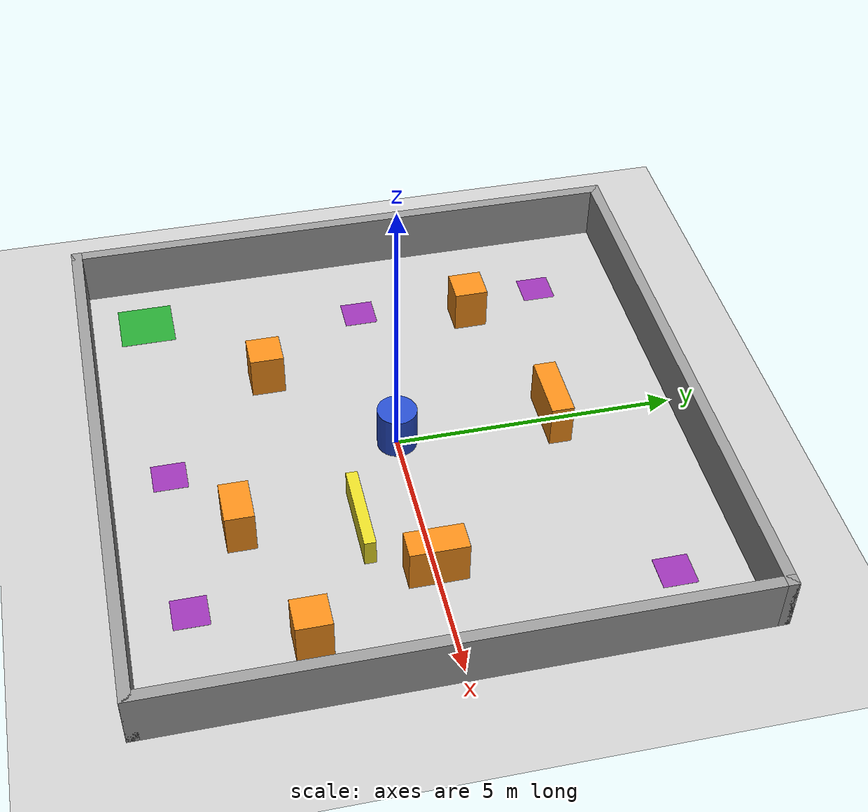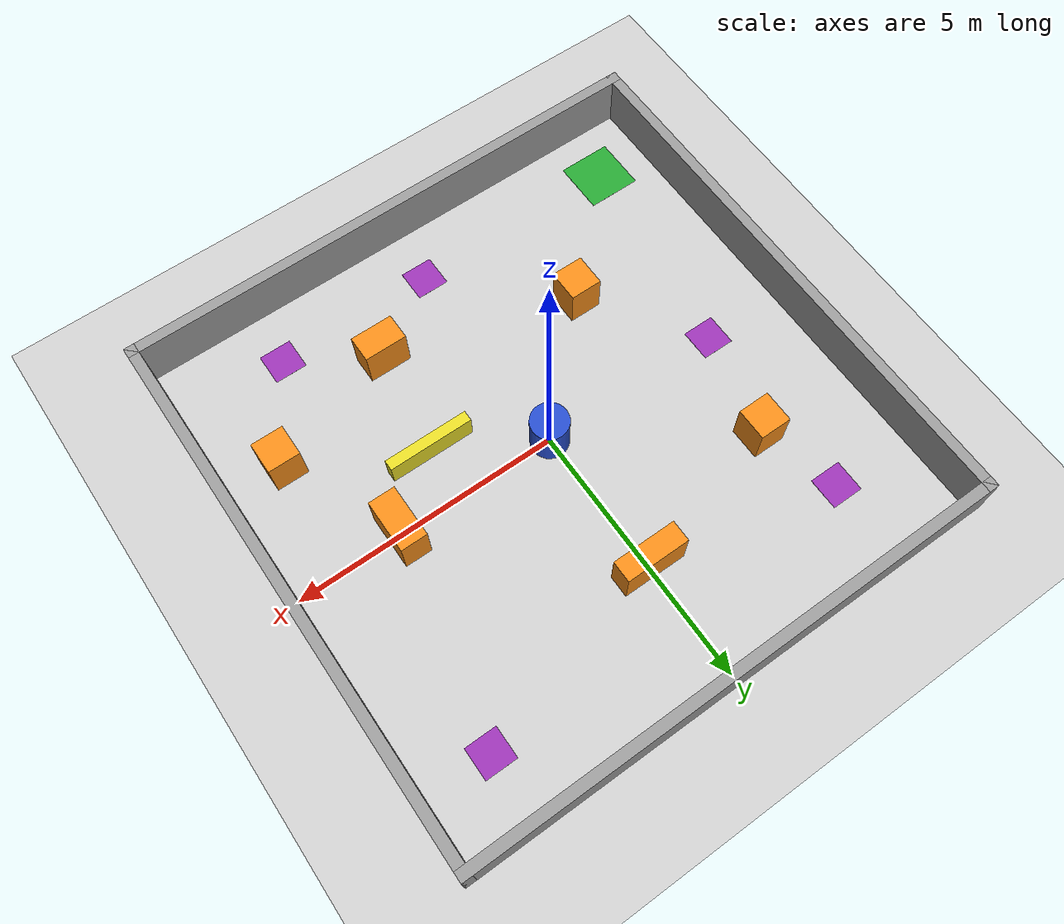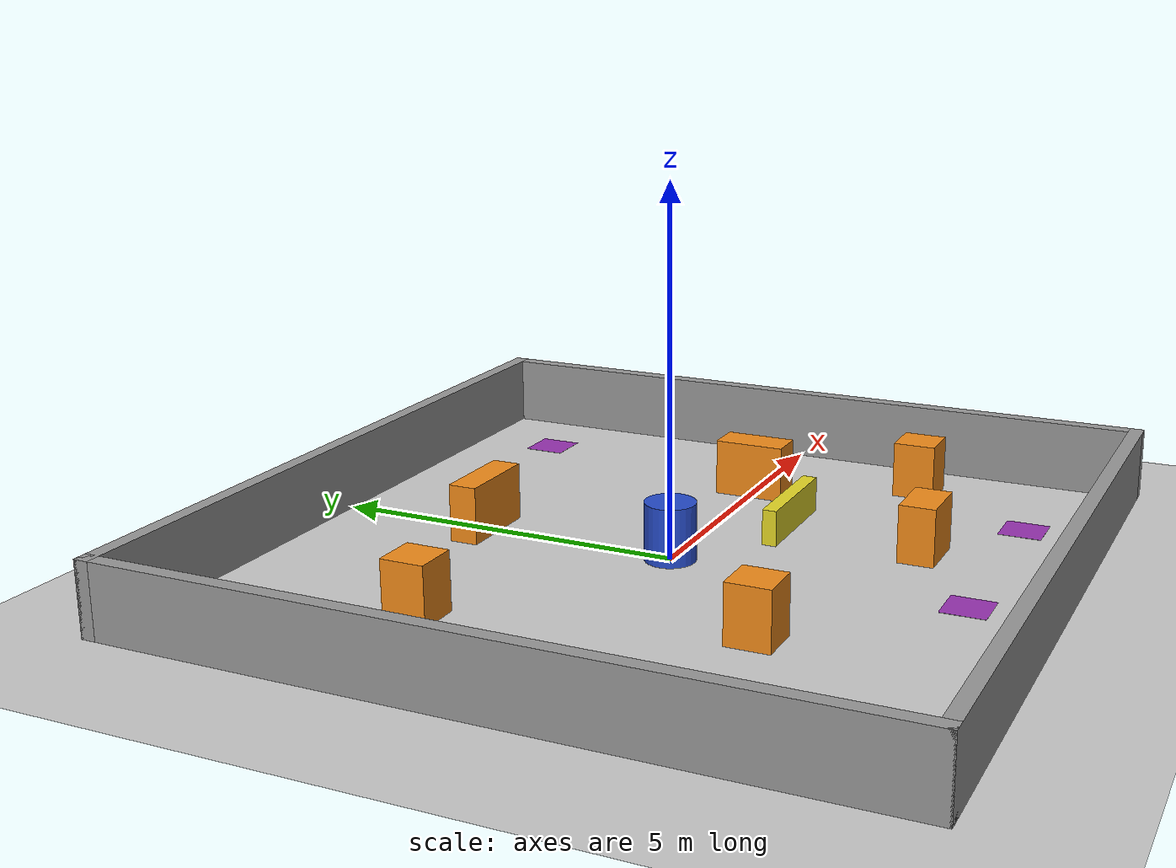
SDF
<sdf version="1.6">
 <world name="obstacle_arena">
  <include><uri>model://sun</uri></include>
  <include><uri>model://ground_plane</uri></include>
  <physics type="ode">
   <real_time_update_rate>1000.0</real_time_update_rate>
   <max_step_size>0.001</max_step_size>
   <real_time_factor>1</real_time_factor>
  </physics>
  <gravity>0 0 -9.8</gravity>
  <scene>
   <ambient>0.6 0.6 0.6 1</ambient>
   <background>0.85 0.9 0.95 1</background>
   <shadows>false</shadows>
  </scene>
  <model name="wall_north">
   <static>true</static>
   <pose>0 5.1 0.5 0 0 0.0</pose>
   <link name="link">
    <collision name="collision"><geometry><box><size>10.4 0.2 1.0</size></box></geometry></collision>
    <visual name="visual">
     <geometry><box><size>10.4 0.2 1.0</size></box></geometry>
     <material>
      <script><uri>file://media/materials/scripts/gazebo.material</uri><name>Gazebo/Grey</name></script>
     </material>
    </visual>
   </link>
  </model>
  <model name="wall_south">
   <static>true</static>
   <pose>0 -5.1 0.5 0 0 0.0</pose>
   <link name="link">
    <collision name="collision"><geometry><box><size>10.4 0.2 1.0</size></box></geometry></collision>
    <visual name="visual">
     <geometry><box><size>10.4 0.2 1.0</size></box></geometry>
     <material>
      <script><uri>file://media/materials/scripts/gazebo.material</uri><name>Gazebo/Grey</name></script>
     </material>
    </visual>
   </link>
  </model>
  <model name="wall_east">
   <static>true</static>
   <pose>5.1 0 0.5 0 0 0.0</pose>
   <link name="link">
    <collision name="collision"><geometry><box><size>0.2 10.4 1.0</size></box></geometry></collision>
    <visual name="visual">
     <geometry><box><size>0.2 10.4 1.0</size></box></geometry>
     <material>
      <script><uri>file://media/materials/scripts/gazebo.material</uri><name>Gazebo/Grey</name></script>
     </material>
    </visual>
   </link>
  </model>
  <model name="wall_west">
   <static>true</static>
   <pose>-5.1 0 0.5 0 0 0.0</pose>
   <link name="link">
    <collision name="collision"><geometry><box><size>0.2 10.4 1.0</size></box></geometry></collision>
    <visual name="visual">
     <geometry><box><size>0.2 10.4 1.0</size></box></geometry>
     <material>
      <script><uri>file://media/materials/scripts/gazebo.material</uri><name>Gazebo/Grey</name></script>
     </material>
    </visual>
   </link>
  </model>
  <model name="box_1">
   <static>true</static>
   <pose>-2.0 -2.0 0.4 0 0 0.0</pose>
   <link name="link">
    <collision name="collision"><geometry><box><size>0.6 0.6 0.8</size></box></geometry></collision>
    <visual name="visual">
     <geometry><box><size>0.6 0.6 0.8</size></box></geometry>
     <material>
      <script><uri>file://media/materials/scripts/gazebo.material</uri><name>Gazebo/Orange</name></script>
     </material>
    </visual>
   </link>
  </model>
  <model name="box_2">
   <static>true</static>
   <pose>1.5 -3.0 0.4 0 0 0.0</pose>
   <link name="link">
    <collision name="collision"><geometry><box><size>0.8 0.5 0.8</size></box></geometry></collision>
    <visual name="visual">
     <geometry><box><size>0.8 0.5 0.8</size></box></geometry>
     <material>
      <script><uri>file://media/materials/scripts/gazebo.material</uri><name>Gazebo/Orange</name></script>
     </material>
    </visual>
   </link>
  </model>
  <model name="box_3">
   <static>true</static>
   <pose>3.0 0.0 0.4 0 0 0.0</pose>
   <link name="link">
    <collision name="collision"><geometry><box><size>0.5 1.0 0.8</size></box></geometry></collision>
    <visual name="visual">
     <geometry><box><size>0.5 1.0 0.8</size></box></geometry>
     <material>
      <script><uri>file://media/materials/scripts/gazebo.material</uri><name>Gazebo/Orange</name></script>
     </material>
    </visual>
   </link>
  </model>
  <model name="box_4">
   <static>true</static>
   <pose>-3.0 2.0 0.4 0 0 0.0</pose>
   <link name="link">
    <collision name="collision"><geometry><box><size>0.6 0.6 0.8</size></box></geometry></collision>
    <visual name="visual">
     <geometry><box><size>0.6 0.6 0.8</size></box></geometry>
     <material>
      <script><uri>file://media/materials/scripts/gazebo.material</uri><name>Gazebo/Orange</name></script>
     </material>
    </visual>
   </link>
  </model>
  <model name="box_5">
   <static>true</static>
   <pose>0.0 2.8 0.4 0 0 0.0</pose>
   <link name="link">
    <collision name="collision"><geometry><box><size>1.2 0.4 0.8</size></box></geometry></collision>
    <visual name="visual">
     <geometry><box><size>1.2 0.4 0.8</size></box></geometry>
     <material>
      <script><uri>file://media/materials/scripts/gazebo.material</uri><name>Gazebo/Orange</name></script>
     </material>
    </visual>
   </link>
  </model>
  <model name="box_6">
   <static>true</static>
   <pose>4.0 -2.2 0.4 0 0 0.0</pose>
   <link name="link">
    <collision name="collision"><geometry><box><size>0.6 0.6 0.8</size></box></geometry></collision>
    <visual name="visual">
     <geometry><box><size>0.6 0.6 0.8</size></box></geometry>
     <material>
      <script><uri>file://media/materials/scripts/gazebo.material</uri><name>Gazebo/Orange</name></script>
     </material>
    </visual>
   </link>
  </model>
  <model name="cylinder_1">
   <static>true</static>
   <pose>0.0 0.0 0.4 0 0 0</pose>
   <link name="link">
    <collision name="collision">
     <geometry><cylinder><radius>0.35</radius><length>0.8</length></cylinder></geometry>
    </collision>
    <visual name="visual">
     <geometry><cylinder><radius>0.35</radius><length>0.8</length></cylinder></geometry>
     <material>
      <script><uri>file://media/materials/scripts/gazebo.material</uri><name>Gazebo/Blue</name></script>
     </material>
    </visual>
   </link>
  </model>
  <model name="half_wall">
   <static>true</static>
   <pose>1.8 -1.0 0.25 0 0 0.0</pose>
   <link name="link">
    <collision name="collision"><geometry><box><size>1.6 0.2 0.5</size></box></geometry></collision>
    <visual name="visual">
     <geometry><box><size>1.6 0.2 0.5</size></box></geometry>
     <material>
      <script><uri>file://media/materials/scripts/gazebo.material</uri><name>Gazebo/Yellow</name></script>
     </material>
    </visual>
   </link>
  </model>
  <model name="start_zone">
   <static>true</static>
   <pose>-4.0 -4.0 0.005 0 0 0</pose>
   <link name="link">
    <visual name="visual">
     <geometry><box><size>1.0 1.0 0.002</size></box></geometry>
     <material>
      <script><uri>file://media/materials/scripts/gazebo.material</uri><name>Gazebo/Green</name></script>
     </material>
    </visual>
   </link>
  </model>
  <model name="goal_A">
   <static>true</static>
   <pose>3.0 -4.0 0.005 0 0 0</pose>
   <link name="link">
    <visual name="visual">
     <geometry><box><size>0.6 0.6 0.002</size></box></geometry>
     <material>
      <script><uri>file://media/materials/scripts/gazebo.material</uri><name>Gazebo/Purple</name></script>
     </material>
    </visual>
   </link>
  </model>
  <model name="goal_B">
   <static>true</static>
   <pose>3.8 3.8 0.005 0 0 0</pose>
   <link name="link">
    <visual name="visual">
     <geometry><box><size>0.6 0.6 0.002</size></box></geometry>
     <material>
      <script><uri>file://media/materials/scripts/gazebo.material</uri><name>Gazebo/Purple</name></script>
     </material>
    </visual>
   </link>
  </model>
  <model name="goal_C">
   <static>true</static>
   <pose>-3.5 3.5 0.005 0 0 0</pose>
   <link name="link">
    <visual name="visual">
     <geometry><box><size>0.6 0.6 0.002</size></box></geometry>
     <material>
      <script><uri>file://media/materials/scripts/gazebo.material</uri><name>Gazebo/Purple</name></script>
     </material>
    </visual>
   </link>
  </model>
  <model name="goal_D">
   <static>true</static>
   <pose>0.0 -4.0 0.005 0 0 0</pose>
   <link name="link">
    <visual name="visual">
     <geometry><box><size>0.6 0.6 0.002</size></box></geometry>
     <material>
      <script><uri>file://media/materials/scripts/gazebo.material</uri><name>Gazebo/Purple</name></script>
     </material>
    </visual>
   </link>
  </model>
  <model name="goal_E">
   <static>true</static>
   <pose>-3.5 0.0 0.005 0 0 0</pose>
   <link name="link">
    <visual name="visual">
     <geometry><box><size>0.6 0.6 0.002</size></box></geometry>
     <material>
      <script><uri>file://media/materials/scripts/gazebo.material</uri><name>Gazebo/Purple</name></script>
     </material>
    </visual>
   </link>
  </model>
 </world>
</sdf>
